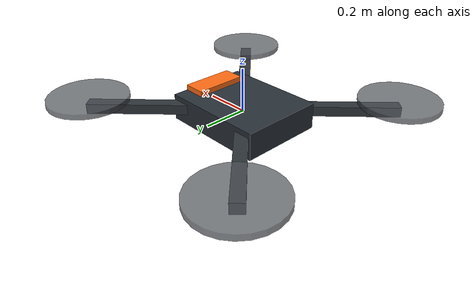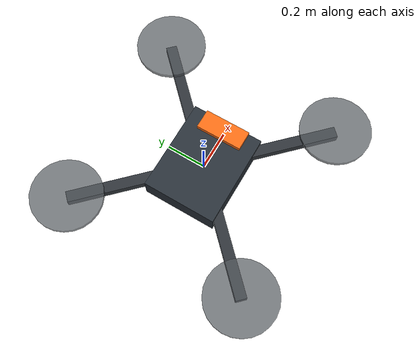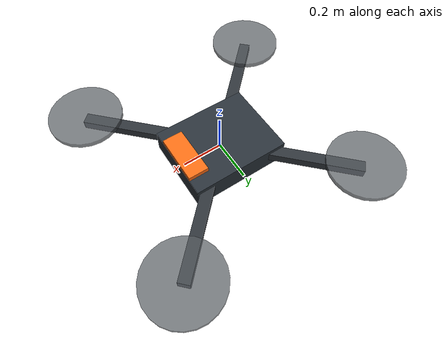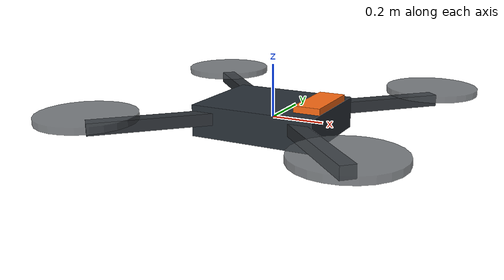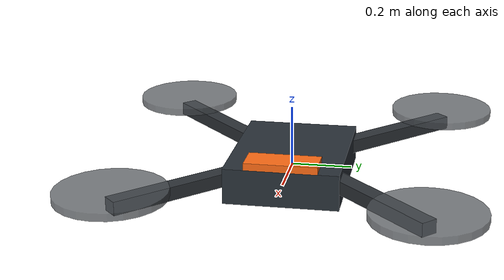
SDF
<?xml version="1.0"?>
<sdf version="1.6">
  <model name="search_quadrotor">
    <static>false</static>
    <allow_auto_disable>false</allow_auto_disable>
    <link name="base_link">
      <gravity>false</gravity>
      <kinematic>true</kinematic>
      <inertial>
        <mass>2.0</mass>
        <inertia><ixx>0.08</ixx><iyy>0.08</iyy><izz>0.12</izz></inertia>
      </inertial>
      <visual name="body">
        <geometry><box><size>0.48 0.38 0.12</size></box></geometry>
        <material><ambient>0.10 0.12 0.14 1</ambient><diffuse>0.16 0.19 0.22 1</diffuse></material>
      </visual>
      <visual name="front_marker">
        <pose>0.19 0 0.072 0 0 0</pose>
        <geometry><box><size>0.10 0.24 0.025</size></box></geometry>
        <material><ambient>0.95 0.32 0.06 1</ambient><diffuse>1.0 0.42 0.08 1</diffuse></material>
      </visual>
      <visual name="arm_front_left">
        <pose>0.23 0.23 0.015 0 0 0.7853981634</pose>
        <geometry><box><size>0.72 0.055 0.045</size></box></geometry>
        <material><ambient>0.12 0.14 0.16 1</ambient><diffuse>0.18 0.20 0.22 1</diffuse></material>
      </visual>
      <visual name="arm_rear_left">
        <pose>-0.23 0.23 0.015 0 0 -0.7853981634</pose>
        <geometry><box><size>0.72 0.055 0.045</size></box></geometry>
        <material><ambient>0.12 0.14 0.16 1</ambient><diffuse>0.18 0.20 0.22 1</diffuse></material>
      </visual>
      <visual name="arm_front_right">
        <pose>0.23 -0.23 0.015 0 0 -0.7853981634</pose>
        <geometry><box><size>0.72 0.055 0.045</size></box></geometry>
        <material><ambient>0.12 0.14 0.16 1</ambient><diffuse>0.18 0.20 0.22 1</diffuse></material>
      </visual>
      <visual name="arm_rear_right">
        <pose>-0.23 -0.23 0.015 0 0 0.7853981634</pose>
        <geometry><box><size>0.72 0.055 0.045</size></box></geometry>
        <material><ambient>0.12 0.14 0.16 1</ambient><diffuse>0.18 0.20 0.22 1</diffuse></material>
      </visual>
      <visual name="rotor_front_left">
        <pose>0.48 0.48 0.055 0 0 0</pose>
        <geometry><cylinder><radius>0.18</radius><length>0.025</length></cylinder></geometry>
        <material><ambient>0.24 0.26 0.28 0.75</ambient><diffuse>0.32 0.34 0.36 0.75</diffuse></material>
      </visual>
      <visual name="rotor_front_right">
        <pose>0.48 -0.48 0.055 0 0 0</pose>
        <geometry><cylinder><radius>0.18</radius><length>0.025</length></cylinder></geometry>
        <material><ambient>0.24 0.26 0.28 0.75</ambient><diffuse>0.32 0.34 0.36 0.75</diffuse></material>
      </visual>
      <visual name="rotor_rear_left">
        <pose>-0.48 0.48 0.055 0 0 0</pose>
        <geometry><cylinder><radius>0.18</radius><length>0.025</length></cylinder></geometry>
        <material><ambient>0.24 0.26 0.28 0.75</ambient><diffuse>0.32 0.34 0.36 0.75</diffuse></material>
      </visual>
      <visual name="rotor_rear_right">
        <pose>-0.48 -0.48 0.055 0 0 0</pose>
        <geometry><cylinder><radius>0.18</radius><length>0.025</length></cylinder></geometry>
        <material><ambient>0.24 0.26 0.28 0.75</ambient><diffuse>0.32 0.34 0.36 0.75</diffuse></material>
      </visual>
      <sensor name="fixed_camera" type="camera">
        <pose>0.10 0 -0.16 0 1.57079632679 0</pose>
        <always_on>true</always_on>
        <update_rate>10</update_rate>
        <visualize>false</visualize>
        <camera>
          <horizontal_fov>1.22</horizontal_fov>
          <image><width>640</width><height>480</height><format>R8G8B8</format></image>
          <clip><near>0.25</near><far>150</far></clip>
        </camera>
        <plugin name="fixed_camera_ros" filename="libgazebo_ros_camera.so">
          <robotNamespace>/moving_uav_search</robotNamespace>
          <cameraName>fixed_camera</cameraName>
          <imageTopicName>image_raw</imageTopicName>
          <cameraInfoTopicName>camera_info</cameraInfoTopicName>
          <frameName>moving_uav_search/fixed_camera_optical_frame</frameName>
          <updateRate>10</updateRate>
        </plugin>
      </sensor>
    </link>
  </model>
</sdf>
